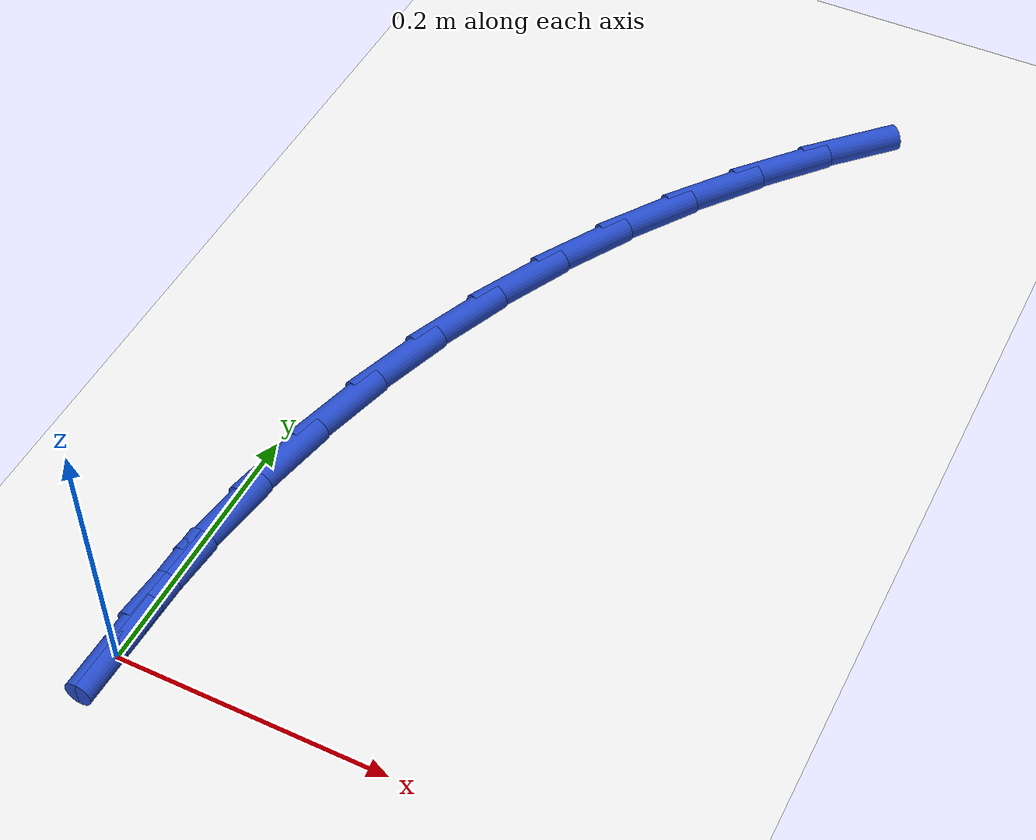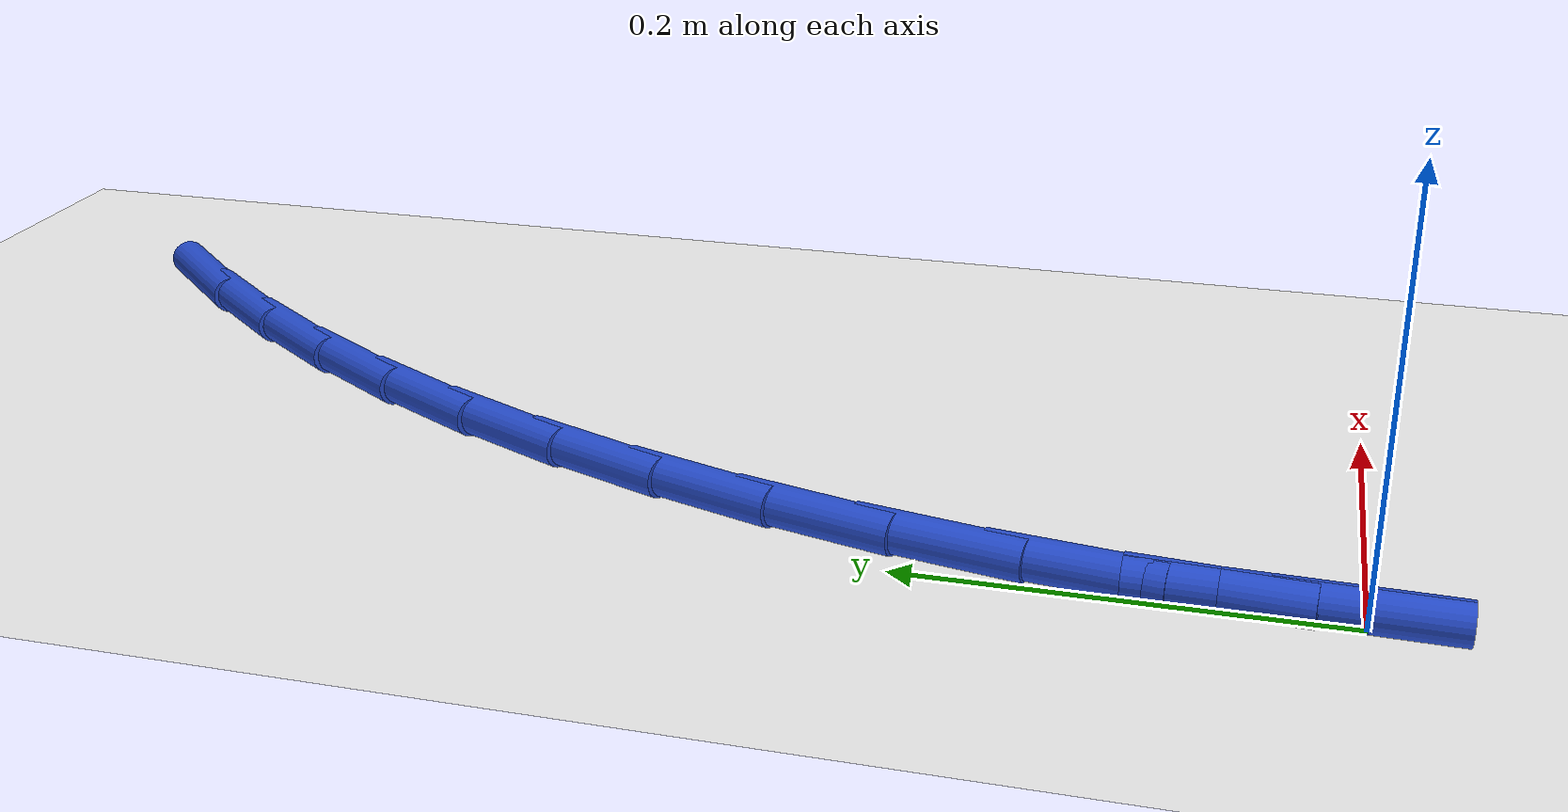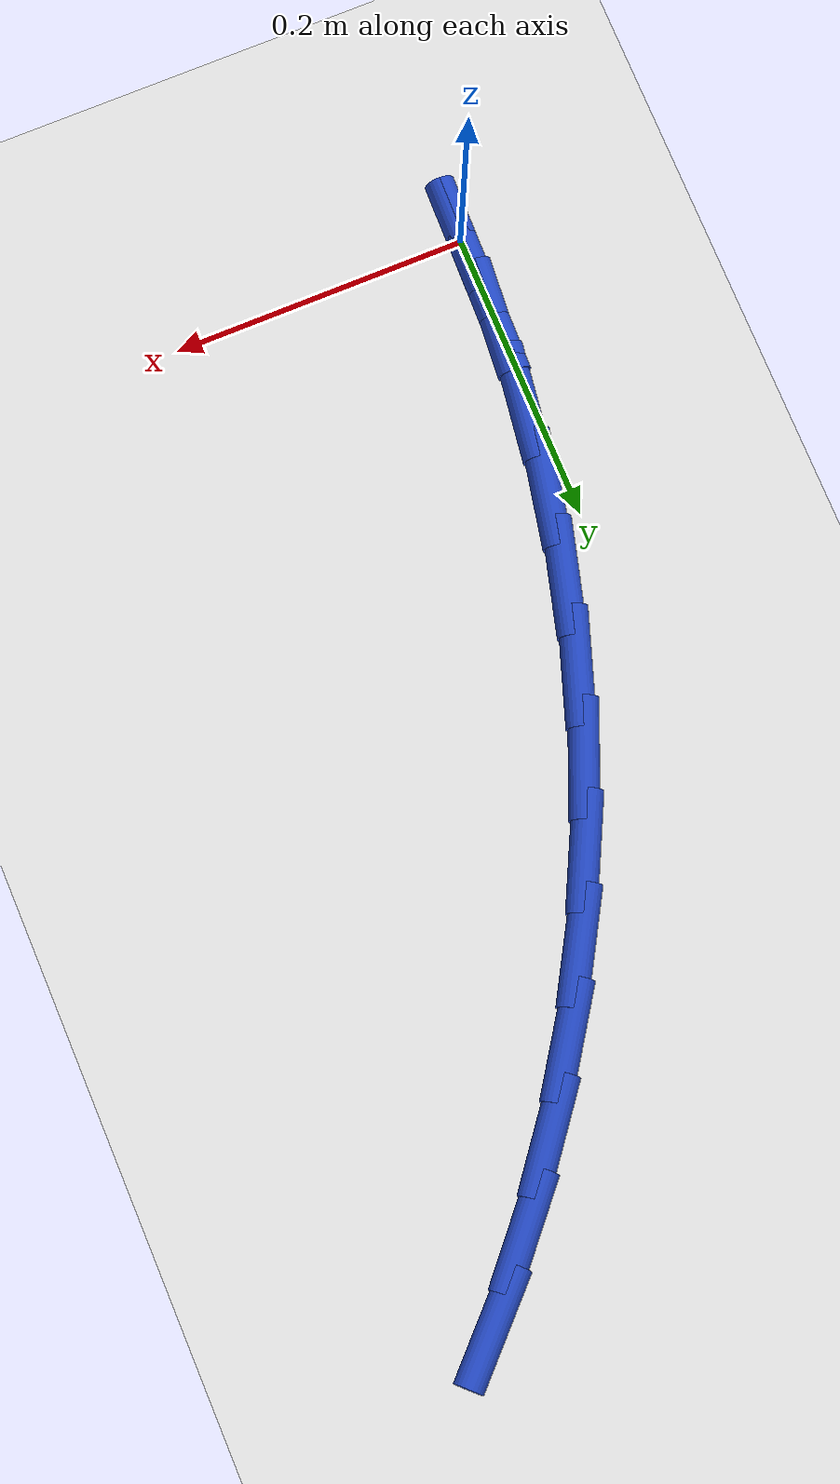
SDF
<sdf version="1.6">
 <world name="default">
  <model name="ground_plane">
   <static>1</static>
   <link name="link">
    <collision name="collision">
     <geometry><plane><normal>0 0 1</normal><size>100 100</size></plane></geometry>
     <surface><friction><ode><mu>100</mu><mu2>50</mu2></ode></friction></surface>
    </collision>
    <visual name="visual">
     <cast_shadows>0</cast_shadows>
     <geometry><plane><normal>0 0 1</normal><size>100 100</size></plane></geometry>
     <material>
      <script><uri>file://media/materials/scripts/gazebo.material</uri><name>Gazebo/WhiteGlow</name></script>
     </material>
    </visual>
   </link>
  </model>
  <model name="line">
   <link name="link_0">
    <pose>-6.938893903907228e-17 1.3877787807814457e-17 0.01 0 1.57 1.5430654040301721</pose>
    <collision name="collision">
     <geometry><cylinder><radius>0.01</radius><length>0.08</length></cylinder></geometry>
    </collision>
    <visual name="visual">
     <material>
      <script><name>Gazebo/Blue</name><uri>file://media/materials/scripts/gazebo.material</uri></script>
     </material>
     <geometry><cylinder><radius>0.01</radius><length>0.08</length></cylinder></geometry>
    </visual>
   </link>
   <link name="link_1">
    <pose>0.0016738700121160365 0.060345662975603856 0.01 0 1.57 1.4850702263140483</pose>
    <collision name="collision">
     <geometry><cylinder><radius>0.01</radius><length>0.08</length></cylinder></geometry>
    </collision>
    <visual name="visual">
     <material>
      <script><name>Gazebo/Blue</name><uri>file://media/materials/scripts/gazebo.material</uri></script>
     </material>
     <geometry><cylinder><radius>0.01</radius><length>0.08</length></cylinder></geometry>
    </visual>
   </link>
   <link name="link_2">
    <pose>0.00682498695845252 0.12028647764958504 0.01 0 1.57 1.426113302935955</pose>
    <collision name="collision">
     <geometry><cylinder><radius>0.01</radius><length>0.08</length></cylinder></geometry>
    </collision>
    <visual name="visual">
     <material>
      <script><name>Gazebo/Blue</name><uri>file://media/materials/scripts/gazebo.material</uri></script>
     </material>
     <geometry><cylinder><radius>0.01</radius><length>0.08</length></cylinder></geometry>
    </visual>
   </link>
   <link name="link_3">
    <pose>0.015472159074520524 0.17963518297125883 0.01 0 1.57 1.366054083726298</pose>
    <collision name="collision">
     <geometry><cylinder><radius>0.01</radius><length>0.08</length></cylinder></geometry>
    </collision>
    <visual name="visual">
     <material>
      <script><name>Gazebo/Blue</name><uri>file://media/materials/scripts/gazebo.material</uri></script>
     </material>
     <geometry><cylinder><radius>0.01</radius><length>0.08</length></cylinder></geometry>
    </visual>
   </link>
   <link name="link_4">
    <pose>0.027634194595831163 0.23820451788994018 0.01 0 1.57 1.3047724659243358</pose>
    <collision name="collision">
     <geometry><cylinder><radius>0.01</radius><length>0.08</length></cylinder></geometry>
    </collision>
    <visual name="visual">
     <material>
      <script><name>Gazebo/Blue</name><uri>file://media/materials/scripts/gazebo.material</uri></script>
     </material>
     <geometry><cylinder><radius>0.01</radius><length>0.08</length></cylinder></geometry>
    </visual>
   </link>
   <link name="link_5">
    <pose>0.0433299017578956 0.2958072213549443 0.01 0 1.57 1.2421753231402994</pose>
    <collision name="collision">
     <geometry><cylinder><radius>0.01</radius><length>0.08</length></cylinder></geometry>
    </collision>
    <visual name="visual">
     <material>
      <script><name>Gazebo/Blue</name><uri>file://media/materials/scripts/gazebo.material</uri></script>
     </material>
     <geometry><cylinder><radius>0.01</radius><length>0.08</length></cylinder></geometry>
    </visual>
   </link>
   <link name="link_6">
    <pose>0.06257808879622492 0.35225603231558633 0.01 0 1.57 1.178203564176584</pose>
    <collision name="collision">
     <geometry><cylinder><radius>0.01</radius><length>0.08</length></cylinder></geometry>
    </collision>
    <visual name="visual">
     <material>
      <script><name>Gazebo/Blue</name><uri>file://media/materials/scripts/gazebo.material</uri></script>
     </material>
     <geometry><cylinder><radius>0.01</radius><length>0.08</length></cylinder></geometry>
    </visual>
   </link>
   <link name="link_7">
    <pose>0.08539756394633027 0.40736368972118137 0.01 0 1.57 1.1128393867805857</pose>
    <collision name="collision">
     <geometry><cylinder><radius>0.01</radius><length>0.08</length></cylinder></geometry>
    </collision>
    <visual name="visual">
     <material>
      <script><name>Gazebo/Blue</name><uri>file://media/materials/scripts/gazebo.material</uri></script>
     </material>
     <geometry><cylinder><radius>0.01</radius><length>0.08</length></cylinder></geometry>
    </visual>
   </link>
   <link name="link_8">
    <pose>0.1118071354437228 0.46094293252104457 0.01 0 1.57 1.0461256572454491</pose>
    <collision name="collision">
     <geometry><cylinder><radius>0.01</radius><length>0.08</length></cylinder></geometry>
    </collision>
    <visual name="visual">
     <material>
      <script><name>Gazebo/Blue</name><uri>file://media/materials/scripts/gazebo.material</uri></script>
     </material>
     <geometry><cylinder><radius>0.01</radius><length>0.08</length></cylinder></geometry>
    </visual>
   </link>
   <link name="link_9">
    <pose>0.14182479186393823 0.512806574042419 0.01 0 1.57 0.9795925351746315</pose>
    <collision name="collision">
     <geometry><cylinder><radius>0.01</radius><length>0.08</length></cylinder></geometry>
    </collision>
    <visual name="visual">
     <material>
      <script><name>Gazebo/Blue</name><uri>file://media/materials/scripts/gazebo.material</uri></script>
     </material>
     <geometry><cylinder><radius>0.01</radius><length>0.08</length></cylinder></geometry>
    </visual>
   </link>
   <link name="link_10">
    <pose>0.17536956626489442 0.5627764070754601 0.01 0 1.57 0.9158750477375952</pose>
    <collision name="collision">
     <geometry><cylinder><radius>0.01</radius><length>0.08</length></cylinder></geometry>
    </collision>
    <visual name="visual">
     <material>
      <script><name>Gazebo/Blue</name><uri>file://media/materials/scripts/gazebo.material</uri></script>
     </material>
     <geometry><cylinder><radius>0.01</radius><length>0.08</length></cylinder></geometry>
    </visual>
   </link>
   <link name="link_11">
    <pose>0.212168425375062 0.6106916529734148 0.01 0 1.57 0.854839791533102</pose>
    <collision name="collision">
     <geometry><cylinder><radius>0.01</radius><length>0.08</length></cylinder></geometry>
    </collision>
    <visual name="visual">
     <material>
      <script><name>Gazebo/Blue</name><uri>file://media/materials/scripts/gazebo.material</uri></script>
     </material>
     <geometry><cylinder><radius>0.01</radius><length>0.08</length></cylinder></geometry>
    </visual>
   </link>
   <link name="link_12">
    <pose>0.25192628546678286 0.6563935340012307 0.01 0 1.57 0.7959860479397055</pose>
    <collision name="collision">
     <geometry><cylinder><radius>0.01</radius><length>0.08</length></cylinder></geometry>
    </collision>
    <visual name="visual">
     <material>
      <script><name>Gazebo/Blue</name><uri>file://media/materials/scripts/gazebo.material</uri></script>
     </material>
     <geometry><cylinder><radius>0.01</radius><length>0.08</length></cylinder></geometry>
    </visual>
   </link>
   <link name="link_120">
    <pose>-9.194034422677078e-17 1.5265566588595902e-16 0.01 0 1.57 1.5431325234317739</pose>
    <collision name="collision">
     <geometry><cylinder><radius>0.01</radius><length>0.08</length></cylinder></geometry>
    </collision>
    <visual name="visual">
     <material>
      <script><name>Gazebo/Blue</name><uri>file://media/materials/scripts/gazebo.material</uri></script>
     </material>
     <geometry><cylinder><radius>0.01</radius><length>0.08</length></cylinder></geometry>
    </visual>
   </link>
   <link name="link_121">
    <pose>0.0016691284261363647 0.060320795214828124 0.01 0 1.57 1.5431325234317743</pose>
    <collision name="collision">
     <geometry><cylinder><radius>0.01</radius><length>0.08</length></cylinder></geometry>
    </collision>
    <visual name="visual">
     <material>
      <script><name>Gazebo/Blue</name><uri>file://media/materials/scripts/gazebo.material</uri></script>
     </material>
     <geometry><cylinder><radius>0.01</radius><length>0.08</length></cylinder></geometry>
    </visual>
   </link>
  </model>
 </world>
</sdf>
